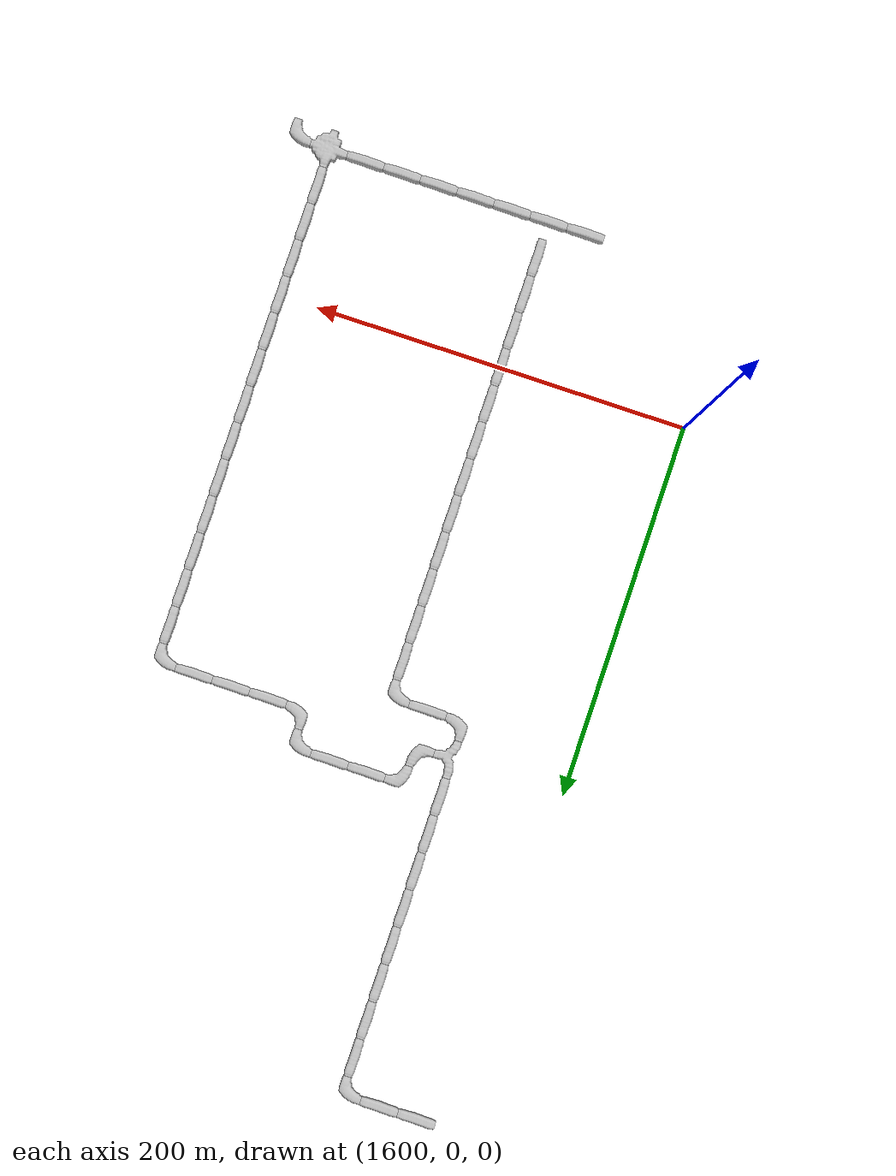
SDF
<sdf version="1.6">
 <world name="cave_32000_32">
  <include>
   <static>true</static>
   <name>cave_84_-4</name>
   <pose>1680 -80 0 0 0 1.5707963267948966</pose>
   <uri>model://cave_straight_20m</uri>
  </include>
  <include>
   <static>true</static>
   <name>cave_85_-4</name>
   <pose>1700 -80 0 0 0 1.5707963267948966</pose>
   <uri>model://cave_straight_20m</uri>
  </include>
  <include>
   <static>true</static>
   <name>cave_86_-4</name>
   <pose>1720 -80 0 0 0 1.5707963267948966</pose>
   <uri>model://cave_straight_20m</uri>
  </include>
  <include>
   <static>true</static>
   <name>cave_87_-4</name>
   <pose>1740 -80 0 0 0 1.5707963267948966</pose>
   <uri>model://cave_straight_20m</uri>
  </include>
  <include>
   <static>true</static>
   <name>cave_88_-4</name>
   <pose>1760 -80 0 0 0 1.5707963267948966</pose>
   <uri>model://cave_straight_20m</uri>
  </include>
  <include>
   <static>true</static>
   <name>cave_89_-4</name>
   <pose>1780 -80 0 0 0 1.5707963267948966</pose>
   <uri>model://cave_straight_20m</uri>
  </include>
  <include>
   <static>true</static>
   <name>cave_90_-4</name>
   <pose>1800 -80 0 0 0 1.5707963267948966</pose>
   <uri>model://cave_straight_20m</uri>
  </include>
  <include>
   <static>true</static>
   <name>cave_91_-4</name>
   <pose>1820 -80 0 0 0 -1.5707963267948966</pose>
   <uri>model://cave_4way_20m</uri>
  </include>
  <include>
   <static>true</static>
   <name>cave_92_-4</name>
   <pose>1840 -80 0 0 0 3.141592653589793</pose>
   <uri>model://cave_L_20m</uri>
  </include>
  <include>
   <static>true</static>
   <name>cave_91_-3</name>
   <pose>1820 -60 0 0 0 0.0</pose>
   <uri>model://cave_straight_20m</uri>
  </include>
  <include>
   <static>true</static>
   <name>cave_91_-2</name>
   <pose>1820 -40 0 0 0 0.0</pose>
   <uri>model://cave_straight_20m</uri>
  </include>
  <include>
   <static>true</static>
   <name>cave_91_-1</name>
   <pose>1820 -20 0 0 0 0.0</pose>
   <uri>model://cave_straight_20m</uri>
  </include>
  <include>
   <static>true</static>
   <name>cave_91_0</name>
   <pose>1820 0 0 0 0 0.0</pose>
   <uri>model://cave_straight_20m</uri>
  </include>
  <include>
   <static>true</static>
   <name>cave_91_1</name>
   <pose>1820 20 0 0 0 0.0</pose>
   <uri>model://cave_straight_20m</uri>
  </include>
  <include>
   <static>true</static>
   <name>cave_91_2</name>
   <pose>1820 40 0 0 0 0.0</pose>
   <uri>model://cave_straight_20m</uri>
  </include>
  <include>
   <static>true</static>
   <name>cave_91_3</name>
   <pose>1820 60 0 0 0 0.0</pose>
   <uri>model://cave_straight_20m</uri>
  </include>
  <include>
   <static>true</static>
   <name>cave_91_4</name>
   <pose>1820 80 0 0 0 0.0</pose>
   <uri>model://cave_straight_20m</uri>
  </include>
  <include>
   <static>true</static>
   <name>cave_91_5</name>
   <pose>1820 100 0 0 0 0.0</pose>
   <uri>model://cave_straight_20m</uri>
  </include>
  <include>
   <static>true</static>
   <name>cave_91_6</name>
   <pose>1820 120 0 0 0 0.0</pose>
   <uri>model://cave_straight_20m</uri>
  </include>
  <include>
   <static>true</static>
   <name>cave_91_7</name>
   <pose>1820 140 0 0 0 0.0</pose>
   <uri>model://cave_straight_20m</uri>
  </include>
  <include>
   <static>true</static>
   <name>cave_91_8</name>
   <pose>1820 160 0 0 0 0.0</pose>
   <uri>model://cave_straight_20m</uri>
  </include>
  <include>
   <static>true</static>
   <name>cave_91_9</name>
   <pose>1820 180 0 0 0 0.0</pose>
   <uri>model://cave_straight_20m</uri>
  </include>
  <include>
   <static>true</static>
   <name>cave_91_10</name>
   <pose>1820 200 0 0 0 3.141592653589793</pose>
   <uri>model://cave_L_20m</uri>
  </include>
  <include>
   <static>true</static>
   <name>cave_90_10</name>
   <pose>1800 200 0 0 0 1.5707963267948966</pose>
   <uri>model://cave_straight_20m</uri>
  </include>
  <include>
   <static>true</static>
   <name>cave_89_10</name>
   <pose>1780 200 0 0 0 1.5707963267948966</pose>
   <uri>model://cave_straight_20m</uri>
  </include>
  <include>
   <static>true</static>
   <name>cave_88_10</name>
   <pose>1760 200 0 0 0 1.5707963267948966</pose>
   <uri>model://cave_straight_20m</uri>
  </include>
  <include>
   <static>true</static>
   <name>cave_87_10</name>
   <pose>1740 200 0 0 0 0.0</pose>
   <uri>model://cave_L_20m</uri>
  </include>
  <include>
   <static>true</static>
   <name>cave_87_11</name>
   <pose>1740 220 0 0 0 3.141592653589793</pose>
   <uri>model://cave_L_20m</uri>
  </include>
  <include>
   <static>true</static>
   <name>cave_86_11</name>
   <pose>1720 220 0 0 0 1.5707963267948966</pose>
   <uri>model://cave_straight_20m</uri>
  </include>
  <include>
   <static>true</static>
   <name>cave_85_11</name>
   <pose>1700 220 0 0 0 1.5707963267948966</pose>
   <uri>model://cave_straight_20m</uri>
  </include>
  <include>
   <static>true</static>
   <name>cave_84_11</name>
   <pose>1680 220 0 0 0 -1.5707963267948966</pose>
   <uri>model://cave_L_20m</uri>
  </include>
  <include>
   <static>true</static>
   <name>cave_84_10</name>
   <pose>1680 200 0 0 0 1.5707963267948966</pose>
   <uri>model://cave_L_20m</uri>
  </include>
  <include>
   <static>true</static>
   <name>cave_83_10</name>
   <pose>1660 200 0 0 0 -1.5707963267948966</pose>
   <uri>model://cave_3way_20m</uri>
  </include>
  <include>
   <static>true</static>
   <name>cave_83_9</name>
   <pose>1660 180 0 0 0 0.0</pose>
   <uri>model://cave_L_20m</uri>
  </include>
  <include>
   <static>true</static>
   <name>cave_84_9</name>
   <pose>1680 180 0 0 0 1.5707963267948966</pose>
   <uri>model://cave_straight_20m</uri>
  </include>
  <include>
   <static>true</static>
   <name>cave_85_9</name>
   <pose>1700 180 0 0 0 3.141592653589793</pose>
   <uri>model://cave_L_20m</uri>
  </include>
  <include>
   <static>true</static>
   <name>cave_85_8</name>
   <pose>1700 160 0 0 0 0.0</pose>
   <uri>model://cave_straight_20m</uri>
  </include>
  <include>
   <static>true</static>
   <name>cave_85_7</name>
   <pose>1700 140 0 0 0 0.0</pose>
   <uri>model://cave_straight_20m</uri>
  </include>
  <include>
   <static>true</static>
   <name>cave_85_6</name>
   <pose>1700 120 0 0 0 0.0</pose>
   <uri>model://cave_straight_20m</uri>
  </include>
  <include>
   <static>true</static>
   <name>cave_85_5</name>
   <pose>1700 100 0 0 0 0.0</pose>
   <uri>model://cave_straight_20m</uri>
  </include>
  <include>
   <static>true</static>
   <name>cave_85_4</name>
   <pose>1700 80 0 0 0 0.0</pose>
   <uri>model://cave_straight_20m</uri>
  </include>
  <include>
   <static>true</static>
   <name>cave_85_3</name>
   <pose>1700 60 0 0 0 0.0</pose>
   <uri>model://cave_straight_20m</uri>
  </include>
  <include>
   <static>true</static>
   <name>cave_85_2</name>
   <pose>1700 40 0 0 0 0.0</pose>
   <uri>model://cave_straight_20m</uri>
  </include>
  <include>
   <static>true</static>
   <name>cave_85_1</name>
   <pose>1700 20 0 0 0 0.0</pose>
   <uri>model://cave_straight_20m</uri>
  </include>
  <include>
   <static>true</static>
   <name>cave_85_0</name>
   <pose>1700 0 0 0 0 0.0</pose>
   <uri>model://cave_straight_20m</uri>
  </include>
  <include>
   <static>true</static>
   <name>cave_85_-1</name>
   <pose>1700 -20 0 0 0 0.0</pose>
   <uri>model://cave_straight_20m</uri>
  </include>
  <include>
   <static>true</static>
   <name>cave_85_-2</name>
   <pose>1700 -40 0 0 0 0.0</pose>
   <uri>model://cave_straight_20m</uri>
  </include>
  <include>
   <static>true</static>
   <name>cave_85_-3</name>
   <pose>1700 -60 0 0 0 0.0</pose>
   <uri>model://cave_straight_20m</uri>
  </include>
  <include>
   <static>true</static>
   <name>cave_83_11</name>
   <pose>1660 220 0 0 0 0.0</pose>
   <uri>model://cave_straight_20m</uri>
  </include>
  <include>
   <static>true</static>
   <name>cave_83_12</name>
   <pose>1660 240 0 0 0 0.0</pose>
   <uri>model://cave_straight_20m</uri>
  </include>
  <include>
   <static>true</static>
   <name>cave_83_13</name>
   <pose>1660 260 0 0 0 0.0</pose>
   <uri>model://cave_straight_20m</uri>
  </include>
  <include>
   <static>true</static>
   <name>cave_83_14</name>
   <pose>1660 280 0 0 0 0.0</pose>
   <uri>model://cave_straight_20m</uri>
  </include>
  <include>
   <static>true</static>
   <name>cave_83_15</name>
   <pose>1660 300 0 0 0 0.0</pose>
   <uri>model://cave_straight_20m</uri>
  </include>
  <include>
   <static>true</static>
   <name>cave_83_16</name>
   <pose>1660 320 0 0 0 0.0</pose>
   <uri>model://cave_straight_20m</uri>
  </include>
  <include>
   <static>true</static>
   <name>cave_83_17</name>
   <pose>1660 340 0 0 0 0.0</pose>
   <uri>model://cave_straight_20m</uri>
  </include>
  <include>
   <static>true</static>
   <name>cave_83_18</name>
   <pose>1660 360 0 0 0 0.0</pose>
   <uri>model://cave_straight_20m</uri>
  </include>
  <include>
   <static>true</static>
   <name>cave_83_19</name>
   <pose>1660 380 0 0 0 3.141592653589793</pose>
   <uri>model://cave_L_20m</uri>
  </include>
  <include>
   <static>true</static>
   <name>cave_82_19</name>
   <pose>1640 380 0 0 0 1.5707963267948966</pose>
   <uri>model://cave_straight_20m</uri>
  </include>
  <include>
   <static>true</static>
   <name>cave_81_19</name>
   <pose>1620 380 0 0 0 1.5707963267948966</pose>
   <uri>model://cave_straight_20m</uri>
  </include>
 </world>
</sdf>
